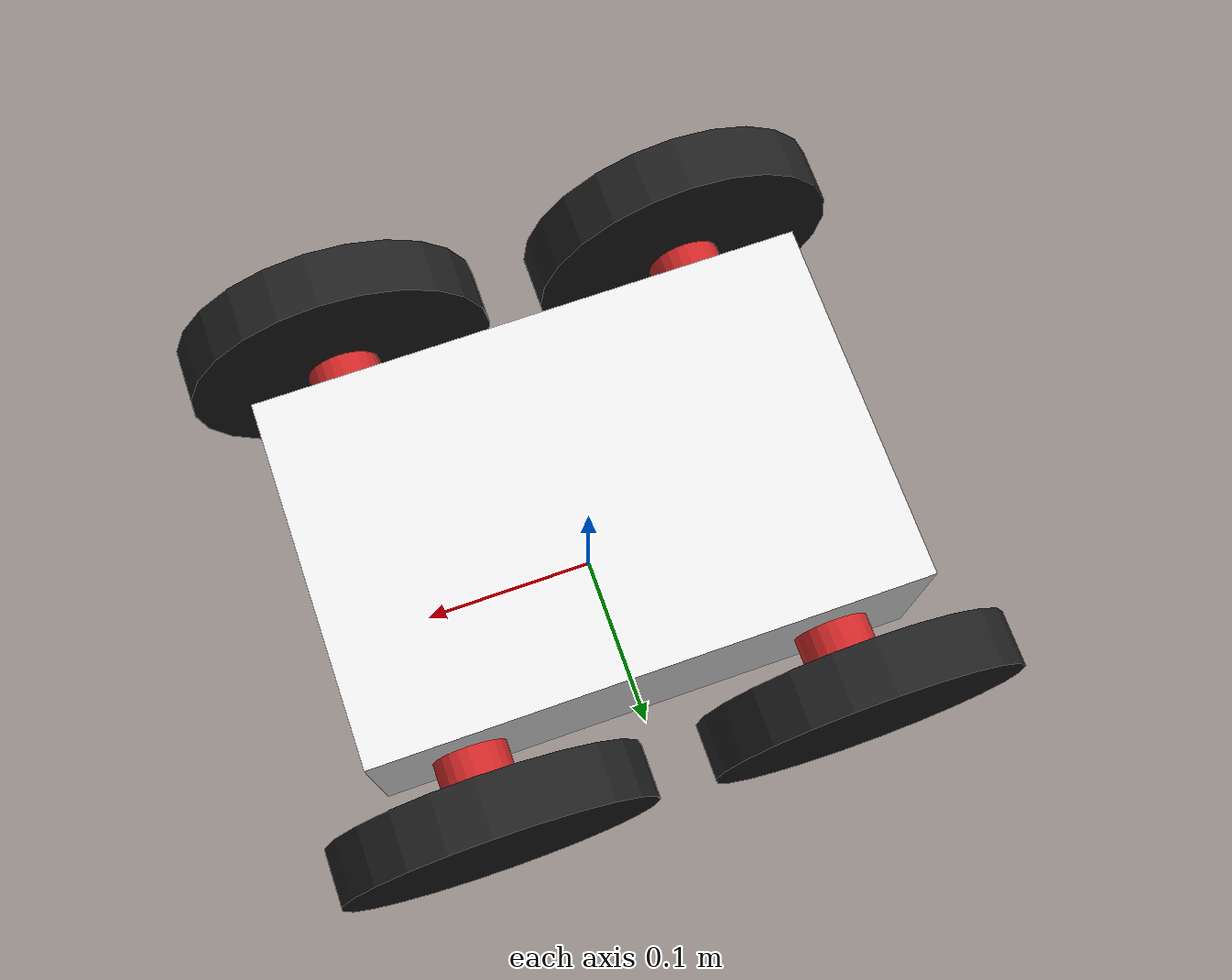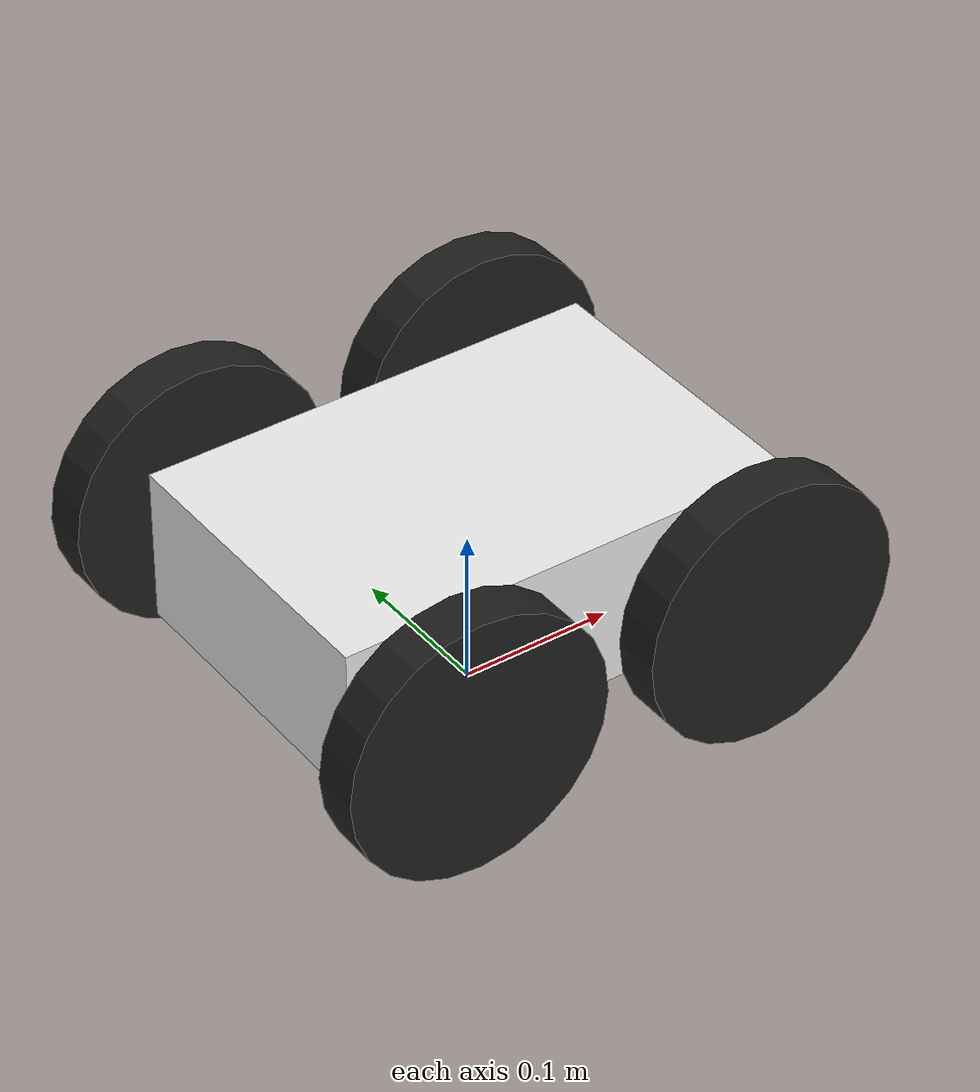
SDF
<sdf version="1.7">
  <model name="simplebot">
    <link name="base_link">
      <inertia>
        <ixx>0.020833333333333336</ixx>
        <iyy>0.041666666666666664</iyy>
        <izz>0.05416666666666666</izz>
        <ixy>0.0</ixy>
        <ixz>0.0</ixz>
        <iyz>0.0</iyz>
      </inertia>
      <pose>0.0 0.0 0.1 0.0 0.0 0.0</pose>
      <visual name="base_link_viz">
        <geometry>
          <box>
            <size>0.3 0.2 0.1</size>
          </box>
        </geometry>
        <material>
          <script>
            <uri>file://media/materials/scripts/gazebo.material</uri>
            <name>Gazebo/White</name>
          </script>
        </material>
      </visual>
      <collision name="coll_base_link">
        <geometry>
          <box>
            <size>0.3 0.2 0.1</size>
          </box>
        </geometry>
      </collision>
    </link>
    <link name="wheel_left_front/wheel_base">
      <inertia>
        <ixx>0.00030833333333333337</ixx>
        <iyy>0.00030833333333333337</iyy>
        <izz>0.0002</izz>
        <ixy>0.0</ixy>
        <ixz>0.0</ixz>
        <iyz>0.0</iyz>
      </inertia>
      <pose relative_to="wheel_left_front/wheel">0.0 0.0 0.0 0.0 0.0 0.0</pose>
      <visual name="wheel_base_viz">
        <geometry>
          <cylinder>
            <radius>0.02</radius>
            <length>0.05</length>
          </cylinder>
        </geometry>
        <material>
          <script>
            <uri>file://media/materials/scripts/gazebo.material</uri>
            <name>Gazebo/Red</name>
          </script>
        </material>
      </visual>
      <collision name="coll_wheel_base">
        <geometry>
          <cylinder>
            <radius>0.02</radius>
            <length>0.05</length>
          </cylinder>
        </geometry>
      </collision>
    </link>
    <link name="wheel_left_front/tire">
      <inertia>
        <ixx>0.004703125000000001</ixx>
        <iyy>0.004703125000000001</iyy>
        <izz>0.009031250000000001</izz>
        <ixy>0.0</ixy>
        <ixz>0.0</ixz>
        <iyz>0.0</iyz>
      </inertia>
      <pose relative_to="wheel_left_front/wheel_joint/tire">0.0 0.0 0.02 0.0 0.0 0.0</pose>
      <visual name="wheel_viz">
        <geometry>
          <cylinder>
            <radius>0.085</radius>
            <length>0.03</length>
          </cylinder>
        </geometry>
        <material>
          <script>
            <uri>file://media/materials/scripts/gazebo.material</uri>
            <name>Gazebo/Black</name>
          </script>
        </material>
      </visual>
      <collision name="coll_tire">
        <geometry>
          <cylinder>
            <radius>0.085</radius>
            <length>0.03</length>
          </cylinder>
        </geometry>
      </collision>
    </link>
    <joint name="wheel_left_front/wheel_joint/tire" type="revolute">
      <pose relative_to="wheel_left_front/wheel_base">0.0 0.0 0.0 0.0 0.0 0.0</pose>
      <parent>wheel_left_front/wheel_base</parent>
      <child>wheel_left_front/tire</child>
      <axis>
        <xyz>0.0 0.0 1.0</xyz>
      </axis>
    </joint>
    <joint name="wheel_left_front/wheel" type="fixed">
      <pose relative_to="base_link">0.1 0.12 0.0 -1.5707963267948966 0.0 0.0</pose>
      <parent>base_link</parent>
      <child>wheel_left_front/wheel_base</child>
      <axis>
        <xyz>0.0 0.0 1.0</xyz>
      </axis>
    </joint>
    <link name="wheel_right_front/wheel_base">
      <inertia>
        <ixx>0.00030833333333333337</ixx>
        <iyy>0.00030833333333333337</iyy>
        <izz>0.0002</izz>
        <ixy>0.0</ixy>
        <ixz>0.0</ixz>
        <iyz>0.0</iyz>
      </inertia>
      <pose relative_to="wheel_right_front/wheel">0.0 0.0 0.0 0.0 0.0 0.0</pose>
      <visual name="wheel_base_viz">
        <geometry>
          <cylinder>
            <radius>0.02</radius>
            <length>0.05</length>
          </cylinder>
        </geometry>
        <material>
          <script>
            <uri>file://media/materials/scripts/gazebo.material</uri>
            <name>Gazebo/Red</name>
          </script>
        </material>
      </visual>
      <collision name="coll_wheel_base">
        <geometry>
          <cylinder>
            <radius>0.02</radius>
            <length>0.05</length>
          </cylinder>
        </geometry>
      </collision>
    </link>
    <link name="wheel_right_front/tire">
      <inertia>
        <ixx>0.004703125000000001</ixx>
        <iyy>0.004703125000000001</iyy>
        <izz>0.009031250000000001</izz>
        <ixy>0.0</ixy>
        <ixz>0.0</ixz>
        <iyz>0.0</iyz>
      </inertia>
      <pose relative_to="wheel_right_front/wheel_joint/tire">0.0 0.0 0.02 0.0 0.0 0.0</pose>
      <visual name="wheel_viz">
        <geometry>
          <cylinder>
            <radius>0.085</radius>
            <length>0.03</length>
          </cylinder>
        </geometry>
        <material>
          <script>
            <uri>file://media/materials/scripts/gazebo.material</uri>
            <name>Gazebo/Black</name>
          </script>
        </material>
      </visual>
      <collision name="coll_tire">
        <geometry>
          <cylinder>
            <radius>0.085</radius>
            <length>0.03</length>
          </cylinder>
        </geometry>
      </collision>
    </link>
    <joint name="wheel_right_front/wheel_joint/tire" type="revolute">
      <pose relative_to="wheel_right_front/wheel_base">0.0 0.0 0.0 0.0 0.0 0.0</pose>
      <parent>wheel_right_front/wheel_base</parent>
      <child>wheel_right_front/tire</child>
      <axis>
        <xyz>0.0 0.0 1.0</xyz>
      </axis>
    </joint>
    <joint name="wheel_right_front/wheel" type="fixed">
      <pose relative_to="base_link">0.1 -0.12 0.0 1.5707963267948966 0.0 0.0</pose>
      <parent>base_link</parent>
      <child>wheel_right_front/wheel_base</child>
      <axis>
        <xyz>0.0 0.0 -1.0</xyz>
      </axis>
    </joint>
    <link name="wheel_right_rear/wheel_base">
      <inertia>
        <ixx>0.00030833333333333337</ixx>
        <iyy>0.00030833333333333337</iyy>
        <izz>0.0002</izz>
        <ixy>0.0</ixy>
        <ixz>0.0</ixz>
        <iyz>0.0</iyz>
      </inertia>
      <pose relative_to="wheel_right_rear/wheel">0.0 0.0 0.0 0.0 0.0 0.0</pose>
      <visual name="wheel_base_viz">
        <geometry>
          <cylinder>
            <radius>0.02</radius>
            <length>0.05</length>
          </cylinder>
        </geometry>
        <material>
          <script>
            <uri>file://media/materials/scripts/gazebo.material</uri>
            <name>Gazebo/Red</name>
          </script>
        </material>
      </visual>
      <collision name="coll_wheel_base">
        <geometry>
          <cylinder>
            <radius>0.02</radius>
            <length>0.05</length>
          </cylinder>
        </geometry>
      </collision>
    </link>
    <link name="wheel_right_rear/tire">
      <inertia>
        <ixx>0.004703125000000001</ixx>
        <iyy>0.004703125000000001</iyy>
        <izz>0.009031250000000001</izz>
        <ixy>0.0</ixy>
        <ixz>0.0</ixz>
        <iyz>0.0</iyz>
      </inertia>
      <pose relative_to="wheel_right_rear/wheel_joint/tire">0.0 0.0 0.02 0.0 0.0 0.0</pose>
      <visual name="wheel_viz">
        <geometry>
          <cylinder>
            <radius>0.085</radius>
            <length>0.03</length>
          </cylinder>
        </geometry>
        <material>
          <script>
            <uri>file://media/materials/scripts/gazebo.material</uri>
            <name>Gazebo/Black</name>
          </script>
        </material>
      </visual>
      <collision name="coll_tire">
        <geometry>
          <cylinder>
            <radius>0.085</radius>
            <length>0.03</length>
          </cylinder>
        </geometry>
      </collision>
    </link>
    <joint name="wheel_right_rear/wheel_joint/tire" type="revolute">
      <pose relative_to="wheel_right_rear/wheel_base">0.0 0.0 0.0 0.0 0.0 0.0</pose>
      <parent>wheel_right_rear/wheel_base</parent>
      <child>wheel_right_rear/tire</child>
      <axis>
        <xyz>0.0 0.0 1.0</xyz>
      </axis>
    </joint>
    <joint name="wheel_right_rear/wheel" type="fixed">
      <pose relative_to="base_link">-0.1 -0.12 0.0 1.5707963267948966 0.0 0.0</pose>
      <parent>base_link</parent>
      <child>wheel_right_rear/wheel_base</child>
      <axis>
        <xyz>0.0 0.0 -1.0</xyz>
      </axis>
    </joint>
    <link name="wheel_left_rear/wheel_base">
      <inertia>
        <ixx>0.00030833333333333337</ixx>
        <iyy>0.00030833333333333337</iyy>
        <izz>0.0002</izz>
        <ixy>0.0</ixy>
        <ixz>0.0</ixz>
        <iyz>0.0</iyz>
      </inertia>
      <pose relative_to="wheel_left_rear/wheel">0.0 0.0 0.0 0.0 0.0 0.0</pose>
      <visual name="wheel_base_viz">
        <geometry>
          <cylinder>
            <radius>0.02</radius>
            <length>0.05</length>
          </cylinder>
        </geometry>
        <material>
          <script>
            <uri>file://media/materials/scripts/gazebo.material</uri>
            <name>Gazebo/Red</name>
          </script>
        </material>
      </visual>
      <collision name="coll_wheel_base">
        <geometry>
          <cylinder>
            <radius>0.02</radius>
            <length>0.05</length>
          </cylinder>
        </geometry>
      </collision>
    </link>
    <link name="wheel_left_rear/tire">
      <inertia>
        <ixx>0.004703125000000001</ixx>
        <iyy>0.004703125000000001</iyy>
        <izz>0.009031250000000001</izz>
        <ixy>0.0</ixy>
        <ixz>0.0</ixz>
        <iyz>0.0</iyz>
      </inertia>
      <pose relative_to="wheel_left_rear/wheel_joint/tire">0.0 0.0 0.02 0.0 0.0 0.0</pose>
      <visual name="wheel_viz">
        <geometry>
          <cylinder>
            <radius>0.085</radius>
            <length>0.03</length>
          </cylinder>
        </geometry>
        <material>
          <script>
            <uri>file://media/materials/scripts/gazebo.material</uri>
            <name>Gazebo/Black</name>
          </script>
        </material>
      </visual>
      <collision name="coll_tire">
        <geometry>
          <cylinder>
            <radius>0.085</radius>
            <length>0.03</length>
          </cylinder>
        </geometry>
      </collision>
    </link>
    <joint name="wheel_left_rear/wheel_joint/tire" type="revolute">
      <pose relative_to="wheel_left_rear/wheel_base">0.0 0.0 0.0 0.0 0.0 0.0</pose>
      <parent>wheel_left_rear/wheel_base</parent>
      <child>wheel_left_rear/tire</child>
      <axis>
        <xyz>0.0 0.0 1.0</xyz>
      </axis>
    </joint>
    <joint name="wheel_left_rear/wheel" type="fixed">
      <pose relative_to="base_link">-0.1 0.12 0.0 -1.5707963267948966 0.0 0.0</pose>
      <parent>base_link</parent>
      <child>wheel_left_rear/wheel_base</child>
      <axis>
        <xyz>0.0 0.0 1.0</xyz>
      </axis>
    </joint>
  </model>
</sdf>
